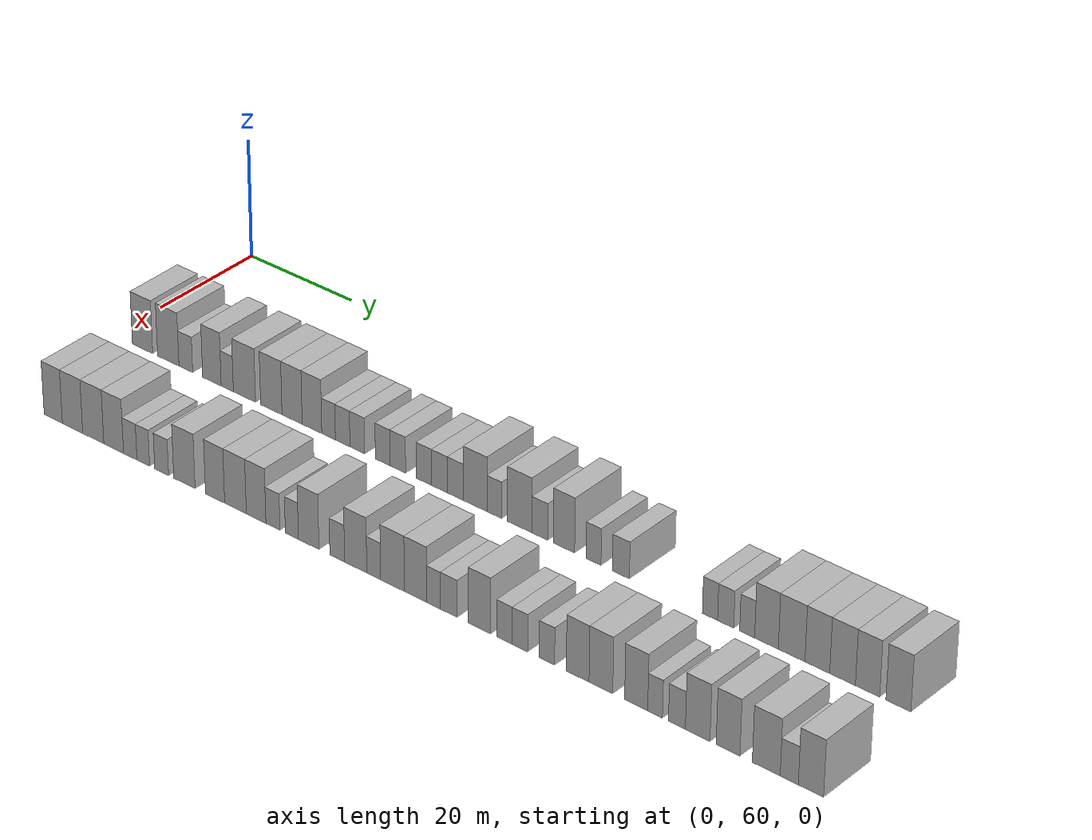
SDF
<sdf version="1.6">
 <world name="default">
  <model name="building_65">
   <static>1</static>
   <pose>25.0000 65.9230 0 0.000000 0.000000 0.000000</pose>
   <link name="link">
    <pose>0 0 4.50 0 0 0</pose>
    <collision name="collision"><geometry><box><size>10.0000 4.0965 9.0000</size></box></geometry></collision>
    <visual name="visual">
     <cast_shadows>0</cast_shadows>
     <geometry><box><size>10.0000 4.0965 9.0000</size></box></geometry>
     <material>
      <script>
       <uri>model://HANNAS_wall/materials/scripts</uri>
       <uri>model://HANNAS_wall/materials/textures</uri>
       <name>vrc/HANNAS_wall</name>
      </script>
     </material>
    </visual>
   </link>
  </model>
  <model name="building_66">
   <static>1</static>
   <pose>25.0000 71.1100 0 0.000000 0.000000 0.000000</pose>
   <link name="link">
    <pose>0 0 4.50 0 0 0</pose>
    <collision name="collision"><geometry><box><size>10.0000 4.2775 9.0000</size></box></geometry></collision>
    <visual name="visual">
     <cast_shadows>0</cast_shadows>
     <geometry><box><size>10.0000 4.2775 9.0000</size></box></geometry>
     <material>
      <script>
       <uri>model://HANNAS_wall/materials/scripts</uri>
       <uri>model://HANNAS_wall/materials/textures</uri>
       <name>vrc/HANNAS_wall</name>
      </script>
     </material>
    </visual>
   </link>
  </model>
  <model name="building_67">
   <static>1</static>
   <pose>25.0000 74.6174 0 0.000000 0.000000 0.000000</pose>
   <link name="link">
    <pose>0 0 3.00 0 0 0</pose>
    <collision name="collision"><geometry><box><size>10.0000 2.7374 6.0000</size></box></geometry></collision>
    <visual name="visual">
     <cast_shadows>0</cast_shadows>
     <geometry><box><size>10.0000 2.7374 6.0000</size></box></geometry>
     <material>
      <script>
       <uri>model://HANNAS_wall/materials/scripts</uri>
       <uri>model://HANNAS_wall/materials/textures</uri>
       <name>vrc/HANNAS_wall</name>
      </script>
     </material>
    </visual>
   </link>
  </model>
  <model name="building_68">
   <static>1</static>
   <pose>25.0000 79.8199 0 0.000000 0.000000 0.000000</pose>
   <link name="link">
    <pose>0 0 4.50 0 0 0</pose>
    <collision name="collision"><geometry><box><size>10.0000 3.6675 9.0000</size></box></geometry></collision>
    <visual name="visual">
     <cast_shadows>0</cast_shadows>
     <geometry><box><size>10.0000 3.6675 9.0000</size></box></geometry>
     <material>
      <script>
       <uri>model://HANNAS_wall/materials/scripts</uri>
       <uri>model://HANNAS_wall/materials/textures</uri>
       <name>vrc/HANNAS_wall</name>
      </script>
     </material>
    </visual>
   </link>
  </model>
  <model name="building_69">
   <static>1</static>
   <pose>25.0000 82.8558 0 0.000000 0.000000 0.000000</pose>
   <link name="link">
    <pose>0 0 3.00 0 0 0</pose>
    <collision name="collision"><geometry><box><size>10.0000 2.4043 6.0000</size></box></geometry></collision>
    <visual name="visual">
     <cast_shadows>0</cast_shadows>
     <geometry><box><size>10.0000 2.4043 6.0000</size></box></geometry>
     <material>
      <script>
       <uri>model://HANNAS_wall/materials/scripts</uri>
       <uri>model://HANNAS_wall/materials/textures</uri>
       <name>vrc/HANNAS_wall</name>
      </script>
     </material>
    </visual>
   </link>
  </model>
  <model name="building_70">
   <static>1</static>
   <pose>25.0000 86.2320 0 0.000000 0.000000 0.000000</pose>
   <link name="link">
    <pose>0 0 4.50 0 0 0</pose>
    <collision name="collision"><geometry><box><size>10.0000 4.3482 9.0000</size></box></geometry></collision>
    <visual name="visual">
     <cast_shadows>0</cast_shadows>
     <geometry><box><size>10.0000 4.3482 9.0000</size></box></geometry>
     <material>
      <script>
       <uri>model://HANNAS_wall/materials/scripts</uri>
       <uri>model://HANNAS_wall/materials/textures</uri>
       <name>vrc/HANNAS_wall</name>
      </script>
     </material>
    </visual>
   </link>
  </model>
  <model name="building_71">
   <static>1</static>
   <pose>25.0000 91.4796 0 0.000000 0.000000 0.000000</pose>
   <link name="link">
    <pose>0 0 4.50 0 0 0</pose>
    <collision name="collision"><geometry><box><size>10.0000 4.1470 9.0000</size></box></geometry></collision>
    <visual name="visual">
     <cast_shadows>0</cast_shadows>
     <geometry><box><size>10.0000 4.1470 9.0000</size></box></geometry>
     <material>
      <script>
       <uri>model://HANNAS_wall/materials/scripts</uri>
       <uri>model://HANNAS_wall/materials/textures</uri>
       <name>vrc/HANNAS_wall</name>
      </script>
     </material>
    </visual>
   </link>
  </model>
  <model name="building_72">
   <static>1</static>
   <pose>25.0000 95.5013 0 0.000000 0.000000 0.000000</pose>
   <link name="link">
    <pose>0 0 4.50 0 0 0</pose>
    <collision name="collision"><geometry><box><size>10.0000 3.8965 9.0000</size></box></geometry></collision>
    <visual name="visual">
     <cast_shadows>0</cast_shadows>
     <geometry><box><size>10.0000 3.8965 9.0000</size></box></geometry>
     <material>
      <script>
       <uri>model://HANNAS_wall/materials/scripts</uri>
       <uri>model://HANNAS_wall/materials/textures</uri>
       <name>vrc/HANNAS_wall</name>
      </script>
     </material>
    </visual>
   </link>
  </model>
  <model name="building_73">
   <static>1</static>
   <pose>25.0000 99.3307 0 0.000000 0.000000 0.000000</pose>
   <link name="link">
    <pose>0 0 4.50 0 0 0</pose>
    <collision name="collision"><geometry><box><size>10.0000 3.7624 9.0000</size></box></geometry></collision>
    <visual name="visual">
     <cast_shadows>0</cast_shadows>
     <geometry><box><size>10.0000 3.7624 9.0000</size></box></geometry>
     <material>
      <script>
       <uri>model://HANNAS_wall/materials/scripts</uri>
       <uri>model://HANNAS_wall/materials/textures</uri>
       <name>vrc/HANNAS_wall</name>
      </script>
     </material>
    </visual>
   </link>
  </model>
  <model name="building_74">
   <static>1</static>
   <pose>25.0000 102.5111 0 0.000000 0.000000 0.000000</pose>
   <link name="link">
    <pose>0 0 3.00 0 0 0</pose>
    <collision name="collision"><geometry><box><size>10.0000 2.5984 6.0000</size></box></geometry></collision>
    <visual name="visual">
     <cast_shadows>0</cast_shadows>
     <geometry><box><size>10.0000 2.5984 6.0000</size></box></geometry>
     <material>
      <script>
       <uri>model://HANNAS_wall/materials/scripts</uri>
       <uri>model://HANNAS_wall/materials/textures</uri>
       <name>vrc/HANNAS_wall</name>
      </script>
     </material>
    </visual>
   </link>
  </model>
  <model name="building_75">
   <static>1</static>
   <pose>25.0000 105.1923 0 0.000000 0.000000 0.000000</pose>
   <link name="link">
    <pose>0 0 3.00 0 0 0</pose>
    <collision name="collision"><geometry><box><size>10.0000 2.7638 6.0000</size></box></geometry></collision>
    <visual name="visual">
     <cast_shadows>0</cast_shadows>
     <geometry><box><size>10.0000 2.7638 6.0000</size></box></geometry>
     <material>
      <script>
       <uri>model://HANNAS_wall/materials/scripts</uri>
       <uri>model://HANNAS_wall/materials/textures</uri>
       <name>vrc/HANNAS_wall</name>
      </script>
     </material>
    </visual>
   </link>
  </model>
  <model name="building_76">
   <static>1</static>
   <pose>25.0000 107.9805 0 0.000000 0.000000 0.000000</pose>
   <link name="link">
    <pose>0 0 3.00 0 0 0</pose>
    <collision name="collision"><geometry><box><size>10.0000 2.8127 6.0000</size></box></geometry></collision>
    <visual name="visual">
     <cast_shadows>0</cast_shadows>
     <geometry><box><size>10.0000 2.8127 6.0000</size></box></geometry>
     <material>
      <script>
       <uri>model://HANNAS_wall/materials/scripts</uri>
       <uri>model://HANNAS_wall/materials/textures</uri>
       <name>vrc/HANNAS_wall</name>
      </script>
     </material>
    </visual>
   </link>
  </model>
  <model name="building_77">
   <static>1</static>
   <pose>25.0000 112.7654 0 0.000000 0.000000 0.000000</pose>
   <link name="link">
    <pose>0 0 3.00 0 0 0</pose>
    <collision name="collision"><geometry><box><size>10.0000 2.7569 6.0000</size></box></geometry></collision>
    <visual name="visual">
     <cast_shadows>0</cast_shadows>
     <geometry><box><size>10.0000 2.7569 6.0000</size></box></geometry>
     <material>
      <script>
       <uri>model://HANNAS_wall/materials/scripts</uri>
       <uri>model://HANNAS_wall/materials/textures</uri>
       <name>vrc/HANNAS_wall</name>
      </script>
     </material>
    </visual>
   </link>
  </model>
  <model name="building_78">
   <static>1</static>
   <pose>25.0000 115.5969 0 0.000000 0.000000 0.000000</pose>
   <link name="link">
    <pose>0 0 3.00 0 0 0</pose>
    <collision name="collision"><geometry><box><size>10.0000 2.9061 6.0000</size></box></geometry></collision>
    <visual name="visual">
     <cast_shadows>0</cast_shadows>
     <geometry><box><size>10.0000 2.9061 6.0000</size></box></geometry>
     <material>
      <script>
       <uri>model://HANNAS_wall/materials/scripts</uri>
       <uri>model://HANNAS_wall/materials/textures</uri>
       <name>vrc/HANNAS_wall</name>
      </script>
     </material>
    </visual>
   </link>
  </model>
  <model name="building_79">
   <static>1</static>
   <pose>25.0000 120.4646 0 0.000000 0.000000 0.000000</pose>
   <link name="link">
    <pose>0 0 3.00 0 0 0</pose>
    <collision name="collision"><geometry><box><size>10.0000 2.8292 6.0000</size></box></geometry></collision>
    <visual name="visual">
     <cast_shadows>0</cast_shadows>
     <geometry><box><size>10.0000 2.8292 6.0000</size></box></geometry>
     <material>
      <script>
       <uri>model://HANNAS_wall/materials/scripts</uri>
       <uri>model://HANNAS_wall/materials/textures</uri>
       <name>vrc/HANNAS_wall</name>
      </script>
     </material>
    </visual>
   </link>
  </model>
  <model name="building_80">
   <static>1</static>
   <pose>25.0000 123.3342 0 0.000000 0.000000 0.000000</pose>
   <link name="link">
    <pose>0 0 3.00 0 0 0</pose>
    <collision name="collision"><geometry><box><size>10.0000 2.9100 6.0000</size></box></geometry></collision>
    <visual name="visual">
     <cast_shadows>0</cast_shadows>
     <geometry><box><size>10.0000 2.9100 6.0000</size></box></geometry>
     <material>
      <script>
       <uri>model://HANNAS_wall/materials/scripts</uri>
       <uri>model://HANNAS_wall/materials/textures</uri>
       <name>vrc/HANNAS_wall</name>
      </script>
     </material>
    </visual>
   </link>
  </model>
  <model name="building_81">
   <static>1</static>
   <pose>25.0000 126.2381 0 0.000000 0.000000 0.000000</pose>
   <link name="link">
    <pose>0 0 3.00 0 0 0</pose>
    <collision name="collision"><geometry><box><size>10.0000 2.8977 6.0000</size></box></geometry></collision>
    <visual name="visual">
     <cast_shadows>0</cast_shadows>
     <geometry><box><size>10.0000 2.8977 6.0000</size></box></geometry>
     <material>
      <script>
       <uri>model://HANNAS_wall/materials/scripts</uri>
       <uri>model://HANNAS_wall/materials/textures</uri>
       <name>vrc/HANNAS_wall</name>
      </script>
     </material>
    </visual>
   </link>
  </model>
  <model name="building_82">
   <static>1</static>
   <pose>25.0000 129.8445 0 0.000000 0.000000 0.000000</pose>
   <link name="link">
    <pose>0 0 4.50 0 0 0</pose>
    <collision name="collision"><geometry><box><size>10.0000 4.3152 9.0000</size></box></geometry></collision>
    <visual name="visual">
     <cast_shadows>0</cast_shadows>
     <geometry><box><size>10.0000 4.3152 9.0000</size></box></geometry>
     <material>
      <script>
       <uri>model://HANNAS_wall/materials/scripts</uri>
       <uri>model://HANNAS_wall/materials/textures</uri>
       <name>vrc/HANNAS_wall</name>
      </script>
     </material>
    </visual>
   </link>
  </model>
  <model name="building_83">
   <static>1</static>
   <pose>25.0000 133.3443 0 0.000000 0.000000 0.000000</pose>
   <link name="link">
    <pose>0 0 3.00 0 0 0</pose>
    <collision name="collision"><geometry><box><size>10.0000 2.6845 6.0000</size></box></geometry></collision>
    <visual name="visual">
     <cast_shadows>0</cast_shadows>
     <geometry><box><size>10.0000 2.6845 6.0000</size></box></geometry>
     <material>
      <script>
       <uri>model://HANNAS_wall/materials/scripts</uri>
       <uri>model://HANNAS_wall/materials/textures</uri>
       <name>vrc/HANNAS_wall</name>
      </script>
     </material>
    </visual>
   </link>
  </model>
  <model name="building_84">
   <static>1</static>
   <pose>25.0000 137.8911 0 0.000000 0.000000 0.000000</pose>
   <link name="link">
    <pose>0 0 4.50 0 0 0</pose>
    <collision name="collision"><geometry><box><size>10.0000 4.4090 9.0000</size></box></geometry></collision>
    <visual name="visual">
     <cast_shadows>0</cast_shadows>
     <geometry><box><size>10.0000 4.4090 9.0000</size></box></geometry>
     <material>
      <script>
       <uri>model://HANNAS_wall/materials/scripts</uri>
       <uri>model://HANNAS_wall/materials/textures</uri>
       <name>vrc/HANNAS_wall</name>
      </script>
     </material>
    </visual>
   </link>
  </model>
  <model name="building_85">
   <static>1</static>
   <pose>25.0000 141.5216 0 0.000000 0.000000 0.000000</pose>
   <link name="link">
    <pose>0 0 3.00 0 0 0</pose>
    <collision name="collision"><geometry><box><size>10.0000 2.8520 6.0000</size></box></geometry></collision>
    <visual name="visual">
     <cast_shadows>0</cast_shadows>
     <geometry><box><size>10.0000 2.8520 6.0000</size></box></geometry>
     <material>
      <script>
       <uri>model://HANNAS_wall/materials/scripts</uri>
       <uri>model://HANNAS_wall/materials/textures</uri>
       <name>vrc/HANNAS_wall</name>
      </script>
     </material>
    </visual>
   </link>
  </model>
  <model name="building_86">
   <static>1</static>
   <pose>25.0000 145.8327 0 0.000000 0.000000 0.000000</pose>
   <link name="link">
    <pose>0 0 4.50 0 0 0</pose>
    <collision name="collision"><geometry><box><size>10.0000 3.7702 9.0000</size></box></geometry></collision>
    <visual name="visual">
     <cast_shadows>0</cast_shadows>
     <geometry><box><size>10.0000 3.7702 9.0000</size></box></geometry>
     <material>
      <script>
       <uri>model://HANNAS_wall/materials/scripts</uri>
       <uri>model://HANNAS_wall/materials/textures</uri>
       <name>vrc/HANNAS_wall</name>
      </script>
     </material>
    </visual>
   </link>
  </model>
  <model name="building_87">
   <static>1</static>
   <pose>25.0000 151.0369 0 0.000000 0.000000 0.000000</pose>
   <link name="link">
    <pose>0 0 3.00 0 0 0</pose>
    <collision name="collision"><geometry><box><size>10.0000 2.6382 6.0000</size></box></geometry></collision>
    <visual name="visual">
     <cast_shadows>0</cast_shadows>
     <geometry><box><size>10.0000 2.6382 6.0000</size></box></geometry>
     <material>
      <script>
       <uri>model://HANNAS_wall/materials/scripts</uri>
       <uri>model://HANNAS_wall/materials/textures</uri>
       <name>vrc/HANNAS_wall</name>
      </script>
     </material>
    </visual>
   </link>
  </model>
  <model name="building_88">
   <static>1</static>
   <pose>25.0000 155.8400 0 0.000000 0.000000 0.000000</pose>
   <link name="link">
    <pose>0 0 3.00 0 0 0</pose>
    <collision name="collision"><geometry><box><size>10.0000 2.9680 6.0000</size></box></geometry></collision>
    <visual name="visual">
     <cast_shadows>0</cast_shadows>
     <geometry><box><size>10.0000 2.9680 6.0000</size></box></geometry>
     <material>
      <script>
       <uri>model://HANNAS_wall/materials/scripts</uri>
       <uri>model://HANNAS_wall/materials/textures</uri>
       <name>vrc/HANNAS_wall</name>
      </script>
     </material>
    </visual>
   </link>
  </model>
  <model name="building_89">
   <static>1</static>
   <pose>25.0000 171.1662 0 0.000000 0.000000 0.000000</pose>
   <link name="link">
    <pose>0 0 3.00 0 0 0</pose>
    <collision name="collision"><geometry><box><size>10.0000 2.5614 6.0000</size></box></geometry></collision>
    <visual name="visual">
     <cast_shadows>0</cast_shadows>
     <geometry><box><size>10.0000 2.5614 6.0000</size></box></geometry>
     <material>
      <script>
       <uri>model://HANNAS_wall/materials/scripts</uri>
       <uri>model://HANNAS_wall/materials/textures</uri>
       <name>vrc/HANNAS_wall</name>
      </script>
     </material>
    </visual>
   </link>
  </model>
  <model name="building_90">
   <static>1</static>
   <pose>25.0000 173.8166 0 0.000000 0.000000 0.000000</pose>
   <link name="link">
    <pose>0 0 3.00 0 0 0</pose>
    <collision name="collision"><geometry><box><size>10.0000 2.7394 6.0000</size></box></geometry></collision>
    <visual name="visual">
     <cast_shadows>0</cast_shadows>
     <geometry><box><size>10.0000 2.7394 6.0000</size></box></geometry>
     <material>
      <script>
       <uri>model://HANNAS_wall/materials/scripts</uri>
       <uri>model://HANNAS_wall/materials/textures</uri>
       <name>vrc/HANNAS_wall</name>
      </script>
     </material>
    </visual>
   </link>
  </model>
  <model name="building_91">
   <static>1</static>
   <pose>25.0000 177.4419 0 0.000000 0.000000 0.000000</pose>
   <link name="link">
    <pose>0 0 3.00 0 0 0</pose>
    <collision name="collision"><geometry><box><size>10.0000 2.5112 6.0000</size></box></geometry></collision>
    <visual name="visual">
     <cast_shadows>0</cast_shadows>
     <geometry><box><size>10.0000 2.5112 6.0000</size></box></geometry>
     <material>
      <script>
       <uri>model://HANNAS_wall/materials/scripts</uri>
       <uri>model://HANNAS_wall/materials/textures</uri>
       <name>vrc/HANNAS_wall</name>
      </script>
     </material>
    </visual>
   </link>
  </model>
  <model name="building_92">
   <static>1</static>
   <pose>25.0000 180.6765 0 0.000000 0.000000 0.000000</pose>
   <link name="link">
    <pose>0 0 4.50 0 0 0</pose>
    <collision name="collision"><geometry><box><size>10.0000 3.9580 9.0000</size></box></geometry></collision>
    <visual name="visual">
     <cast_shadows>0</cast_shadows>
     <geometry><box><size>10.0000 3.9580 9.0000</size></box></geometry>
     <material>
      <script>
       <uri>model://HANNAS_wall/materials/scripts</uri>
       <uri>model://HANNAS_wall/materials/textures</uri>
       <name>vrc/HANNAS_wall</name>
      </script>
     </material>
    </visual>
   </link>
  </model>
  <model name="building_93">
   <static>1</static>
   <pose>25.0000 184.8599 0 0.000000 0.000000 0.000000</pose>
   <link name="link">
    <pose>0 0 4.50 0 0 0</pose>
    <collision name="collision"><geometry><box><size>10.0000 4.4089 9.0000</size></box></geometry></collision>
    <visual name="visual">
     <cast_shadows>0</cast_shadows>
     <geometry><box><size>10.0000 4.4089 9.0000</size></box></geometry>
     <material>
      <script>
       <uri>model://HANNAS_wall/materials/scripts</uri>
       <uri>model://HANNAS_wall/materials/textures</uri>
       <name>vrc/HANNAS_wall</name>
      </script>
     </material>
    </visual>
   </link>
  </model>
  <model name="building_94">
   <static>1</static>
   <pose>25.0000 189.0969 0 0.000000 0.000000 0.000000</pose>
   <link name="link">
    <pose>0 0 4.50 0 0 0</pose>
    <collision name="collision"><geometry><box><size>10.0000 4.0651 9.0000</size></box></geometry></collision>
    <visual name="visual">
     <cast_shadows>0</cast_shadows>
     <geometry><box><size>10.0000 4.0651 9.0000</size></box></geometry>
     <material>
      <script>
       <uri>model://HANNAS_wall/materials/scripts</uri>
       <uri>model://HANNAS_wall/materials/textures</uri>
       <name>vrc/HANNAS_wall</name>
      </script>
     </material>
    </visual>
   </link>
  </model>
  <model name="building_95">
   <static>1</static>
   <pose>25.0000 193.2260 0 0.000000 0.000000 0.000000</pose>
   <link name="link">
    <pose>0 0 4.50 0 0 0</pose>
    <collision name="collision"><geometry><box><size>10.0000 4.1931 9.0000</size></box></geometry></collision>
    <visual name="visual">
     <cast_shadows>0</cast_shadows>
     <geometry><box><size>10.0000 4.1931 9.0000</size></box></geometry>
     <material>
      <script>
       <uri>model://HANNAS_wall/materials/scripts</uri>
       <uri>model://HANNAS_wall/materials/textures</uri>
       <name>vrc/HANNAS_wall</name>
      </script>
     </material>
    </visual>
   </link>
  </model>
  <model name="building_96">
   <static>1</static>
   <pose>25.0000 197.2912 0 0.000000 0.000000 0.000000</pose>
   <link name="link">
    <pose>0 0 4.50 0 0 0</pose>
    <collision name="collision"><geometry><box><size>10.0000 3.9373 9.0000</size></box></geometry></collision>
    <visual name="visual">
     <cast_shadows>0</cast_shadows>
     <geometry><box><size>10.0000 3.9373 9.0000</size></box></geometry>
     <material>
      <script>
       <uri>model://HANNAS_wall/materials/scripts</uri>
       <uri>model://HANNAS_wall/materials/textures</uri>
       <name>vrc/HANNAS_wall</name>
      </script>
     </material>
    </visual>
   </link>
  </model>
  <model name="building_97">
   <static>1</static>
   <pose>25.0000 202.2683 0 0.000000 0.000000 0.000000</pose>
   <link name="link">
    <pose>0 0 4.50 0 0 0</pose>
    <collision name="collision"><geometry><box><size>10.0000 4.0169 9.0000</size></box></geometry></collision>
    <visual name="visual">
     <cast_shadows>0</cast_shadows>
     <geometry><box><size>10.0000 4.0169 9.0000</size></box></geometry>
     <material>
      <script>
       <uri>model://HANNAS_wall/materials/scripts</uri>
       <uri>model://HANNAS_wall/materials/textures</uri>
       <name>vrc/HANNAS_wall</name>
      </script>
     </material>
    </visual>
   </link>
  </model>
  <model name="building_168">
   <static>1</static>
   <pose>47.0000 69.4501 0 0.000000 0.000000 0.000000</pose>
   <link name="link">
    <pose>0 0 4.50 0 0 0</pose>
    <collision name="collision"><geometry><box><size>10.0000 3.6512 9.0000</size></box></geometry></collision>
    <visual name="visual">
     <cast_shadows>0</cast_shadows>
     <geometry><box><size>10.0000 3.6512 9.0000</size></box></geometry>
     <material>
      <script>
       <uri>model://HANNAS_wall/materials/scripts</uri>
       <uri>model://HANNAS_wall/materials/textures</uri>
       <name>vrc/HANNAS_wall</name>
      </script>
     </material>
    </visual>
   </link>
  </model>
  <model name="building_169">
   <static>1</static>
   <pose>47.0000 73.3020 0 0.000000 0.000000 0.000000</pose>
   <link name="link">
    <pose>0 0 4.50 0 0 0</pose>
    <collision name="collision"><geometry><box><size>10.0000 4.0527 9.0000</size></box></geometry></collision>
    <visual name="visual">
     <cast_shadows>0</cast_shadows>
     <geometry><box><size>10.0000 4.0527 9.0000</size></box></geometry>
     <material>
      <script>
       <uri>model://HANNAS_wall/materials/scripts</uri>
       <uri>model://HANNAS_wall/materials/textures</uri>
       <name>vrc/HANNAS_wall</name>
      </script>
     </material>
    </visual>
   </link>
  </model>
  <model name="building_170">
   <static>1</static>
   <pose>47.0000 77.4218 0 0.000000 0.000000 0.000000</pose>
   <link name="link">
    <pose>0 0 4.50 0 0 0</pose>
    <collision name="collision"><geometry><box><size>10.0000 4.1869 9.0000</size></box></geometry></collision>
    <visual name="visual">
     <cast_shadows>0</cast_shadows>
     <geometry><box><size>10.0000 4.1869 9.0000</size></box></geometry>
     <material>
      <script>
       <uri>model://HANNAS_wall/materials/scripts</uri>
       <uri>model://HANNAS_wall/materials/textures</uri>
       <name>vrc/HANNAS_wall</name>
      </script>
     </material>
    </visual>
   </link>
  </model>
  <model name="building_171">
   <static>1</static>
   <pose>47.0000 81.4517 0 0.000000 0.000000 0.000000</pose>
   <link name="link">
    <pose>0 0 4.50 0 0 0</pose>
    <collision name="collision"><geometry><box><size>10.0000 3.8730 9.0000</size></box></geometry></collision>
    <visual name="visual">
     <cast_shadows>0</cast_shadows>
     <geometry><box><size>10.0000 3.8730 9.0000</size></box></geometry>
     <material>
      <script>
       <uri>model://HANNAS_wall/materials/scripts</uri>
       <uri>model://HANNAS_wall/materials/textures</uri>
       <name>vrc/HANNAS_wall</name>
      </script>
     </material>
    </visual>
   </link>
  </model>
  <model name="building_172">
   <static>1</static>
   <pose>47.0000 84.7030 0 0.000000 0.000000 0.000000</pose>
   <link name="link">
    <pose>0 0 3.00 0 0 0</pose>
    <collision name="collision"><geometry><box><size>10.0000 2.6296 6.0000</size></box></geometry></collision>
    <visual name="visual">
     <cast_shadows>0</cast_shadows>
     <geometry><box><size>10.0000 2.6296 6.0000</size></box></geometry>
     <material>
      <script>
       <uri>model://HANNAS_wall/materials/scripts</uri>
       <uri>model://HANNAS_wall/materials/textures</uri>
       <name>vrc/HANNAS_wall</name>
      </script>
     </material>
    </visual>
   </link>
  </model>
  <model name="building_173">
   <static>1</static>
   <pose>47.0000 87.2542 0 0.000000 0.000000 0.000000</pose>
   <link name="link">
    <pose>0 0 3.00 0 0 0</pose>
    <collision name="collision"><geometry><box><size>10.0000 2.4729 6.0000</size></box></geometry></collision>
    <visual name="visual">
     <cast_shadows>0</cast_shadows>
     <geometry><box><size>10.0000 2.4729 6.0000</size></box></geometry>
     <material>
      <script>
       <uri>model://HANNAS_wall/materials/scripts</uri>
       <uri>model://HANNAS_wall/materials/textures</uri>
       <name>vrc/HANNAS_wall</name>
      </script>
     </material>
    </visual>
   </link>
  </model>
  <model name="building_174">
   <static>1</static>
   <pose>47.0000 90.8323 0 0.000000 0.000000 0.000000</pose>
   <link name="link">
    <pose>0 0 3.00 0 0 0</pose>
    <collision name="collision"><geometry><box><size>10.0000 2.6833 6.0000</size></box></geometry></collision>
    <visual name="visual">
     <cast_shadows>0</cast_shadows>
     <geometry><box><size>10.0000 2.6833 6.0000</size></box></geometry>
     <material>
      <script>
       <uri>model://HANNAS_wall/materials/scripts</uri>
       <uri>model://HANNAS_wall/materials/textures</uri>
       <name>vrc/HANNAS_wall</name>
      </script>
     </material>
    </visual>
   </link>
  </model>
  <model name="building_175">
   <static>1</static>
   <pose>47.0000 95.2192 0 0.000000 0.000000 0.000000</pose>
   <link name="link">
    <pose>0 0 4.50 0 0 0</pose>
    <collision name="collision"><geometry><box><size>10.0000 4.0905 9.0000</size></box></geometry></collision>
    <visual name="visual">
     <cast_shadows>0</cast_shadows>
     <geometry><box><size>10.0000 4.0905 9.0000</size></box></geometry>
     <material>
      <script>
       <uri>model://HANNAS_wall/materials/scripts</uri>
       <uri>model://HANNAS_wall/materials/textures</uri>
       <name>vrc/HANNAS_wall</name>
      </script>
     </material>
    </visual>
   </link>
  </model>
  <model name="building_176">
   <static>1</static>
   <pose>47.0000 101.0885 0 0.000000 0.000000 0.000000</pose>
   <link name="link">
    <pose>0 0 4.50 0 0 0</pose>
    <collision name="collision"><geometry><box><size>10.0000 3.6480 9.0000</size></box></geometry></collision>
    <visual name="visual">
     <cast_shadows>0</cast_shadows>
     <geometry><box><size>10.0000 3.6480 9.0000</size></box></geometry>
     <material>
      <script>
       <uri>model://HANNAS_wall/materials/scripts</uri>
       <uri>model://HANNAS_wall/materials/textures</uri>
       <name>vrc/HANNAS_wall</name>
      </script>
     </material>
    </visual>
   </link>
  </model>
  <model name="building_177">
   <static>1</static>
   <pose>47.0000 104.9630 0 0.000000 0.000000 0.000000</pose>
   <link name="link">
    <pose>0 0 4.50 0 0 0</pose>
    <collision name="collision"><geometry><box><size>10.0000 4.1011 9.0000</size></box></geometry></collision>
    <visual name="visual">
     <cast_shadows>0</cast_shadows>
     <geometry><box><size>10.0000 4.1011 9.0000</size></box></geometry>
     <material>
      <script>
       <uri>model://HANNAS_wall/materials/scripts</uri>
       <uri>model://HANNAS_wall/materials/textures</uri>
       <name>vrc/HANNAS_wall</name>
      </script>
     </material>
    </visual>
   </link>
  </model>
  <model name="building_178">
   <static>1</static>
   <pose>47.0000 108.8554 0 0.000000 0.000000 0.000000</pose>
   <link name="link">
    <pose>0 0 4.50 0 0 0</pose>
    <collision name="collision"><geometry><box><size>10.0000 3.6836 9.0000</size></box></geometry></collision>
    <visual name="visual">
     <cast_shadows>0</cast_shadows>
     <geometry><box><size>10.0000 3.6836 9.0000</size></box></geometry>
     <material>
      <script>
       <uri>model://HANNAS_wall/materials/scripts</uri>
       <uri>model://HANNAS_wall/materials/textures</uri>
       <name>vrc/HANNAS_wall</name>
      </script>
     </material>
    </visual>
   </link>
  </model>
  <model name="building_179">
   <static>1</static>
   <pose>47.0000 112.0121 0 0.000000 0.000000 0.000000</pose>
   <link name="link">
    <pose>0 0 3.00 0 0 0</pose>
    <collision name="collision"><geometry><box><size>10.0000 2.6298 6.0000</size></box></geometry></collision>
    <visual name="visual">
     <cast_shadows>0</cast_shadows>
     <geometry><box><size>10.0000 2.6298 6.0000</size></box></geometry>
     <material>
      <script>
       <uri>model://HANNAS_wall/materials/scripts</uri>
       <uri>model://HANNAS_wall/materials/textures</uri>
       <name>vrc/HANNAS_wall</name>
      </script>
     </material>
    </visual>
   </link>
  </model>
  <model name="building_180">
   <static>1</static>
   <pose>47.0000 115.5392 0 0.000000 0.000000 0.000000</pose>
   <link name="link">
    <pose>0 0 3.00 0 0 0</pose>
    <collision name="collision"><geometry><box><size>10.0000 2.4243 6.0000</size></box></geometry></collision>
    <visual name="visual">
     <cast_shadows>0</cast_shadows>
     <geometry><box><size>10.0000 2.4243 6.0000</size></box></geometry>
     <material>
      <script>
       <uri>model://HANNAS_wall/materials/scripts</uri>
       <uri>model://HANNAS_wall/materials/textures</uri>
       <name>vrc/HANNAS_wall</name>
      </script>
     </material>
    </visual>
   </link>
  </model>
  <model name="building_181">
   <static>1</static>
   <pose>47.0000 118.6518 0 0.000000 0.000000 0.000000</pose>
   <link name="link">
    <pose>0 0 4.50 0 0 0</pose>
    <collision name="collision"><geometry><box><size>10.0000 3.8011 9.0000</size></box></geometry></collision>
    <visual name="visual">
     <cast_shadows>0</cast_shadows>
     <geometry><box><size>10.0000 3.8011 9.0000</size></box></geometry>
     <material>
      <script>
       <uri>model://HANNAS_wall/materials/scripts</uri>
       <uri>model://HANNAS_wall/materials/textures</uri>
       <name>vrc/HANNAS_wall</name>
      </script>
     </material>
    </visual>
   </link>
  </model>
  <model name="building_182">
   <static>1</static>
   <pose>47.0000 123.9074 0 0.000000 0.000000 0.000000</pose>
   <link name="link">
    <pose>0 0 3.00 0 0 0</pose>
    <collision name="collision"><geometry><box><size>10.0000 2.7101 6.0000</size></box></geometry></collision>
    <visual name="visual">
     <cast_shadows>0</cast_shadows>
     <geometry><box><size>10.0000 2.7101 6.0000</size></box></geometry>
     <material>
      <script>
       <uri>model://HANNAS_wall/materials/scripts</uri>
       <uri>model://HANNAS_wall/materials/textures</uri>
       <name>vrc/HANNAS_wall</name>
      </script>
     </material>
    </visual>
   </link>
  </model>
  <model name="building_183">
   <static>1</static>
   <pose>47.0000 127.2789 0 0.000000 0.000000 0.000000</pose>
   <link name="link">
    <pose>0 0 4.50 0 0 0</pose>
    <collision name="collision"><geometry><box><size>10.0000 4.0329 9.0000</size></box></geometry></collision>
    <visual name="visual">
     <cast_shadows>0</cast_shadows>
     <geometry><box><size>10.0000 4.0329 9.0000</size></box></geometry>
     <material>
      <script>
       <uri>model://HANNAS_wall/materials/scripts</uri>
       <uri>model://HANNAS_wall/materials/textures</uri>
       <name>vrc/HANNAS_wall</name>
      </script>
     </material>
    </visual>
   </link>
  </model>
  <model name="building_184">
   <static>1</static>
   <pose>47.0000 130.5499 0 0.000000 0.000000 0.000000</pose>
   <link name="link">
    <pose>0 0 3.00 0 0 0</pose>
    <collision name="collision"><geometry><box><size>10.0000 2.5091 6.0000</size></box></geometry></collision>
    <visual name="visual">
     <cast_shadows>0</cast_shadows>
     <geometry><box><size>10.0000 2.5091 6.0000</size></box></geometry>
     <material>
      <script>
       <uri>model://HANNAS_wall/materials/scripts</uri>
       <uri>model://HANNAS_wall/materials/textures</uri>
       <name>vrc/HANNAS_wall</name>
      </script>
     </material>
    </visual>
   </link>
  </model>
  <model name="building_185">
   <static>1</static>
   <pose>47.0000 133.9427 0 0.000000 0.000000 0.000000</pose>
   <link name="link">
    <pose>0 0 4.50 0 0 0</pose>
    <collision name="collision"><geometry><box><size>10.0000 4.2765 9.0000</size></box></geometry></collision>
    <visual name="visual">
     <cast_shadows>0</cast_shadows>
     <geometry><box><size>10.0000 4.2765 9.0000</size></box></geometry>
     <material>
      <script>
       <uri>model://HANNAS_wall/materials/scripts</uri>
       <uri>model://HANNAS_wall/materials/textures</uri>
       <name>vrc/HANNAS_wall</name>
      </script>
     </material>
    </visual>
   </link>
  </model>
  <model name="building_186">
   <static>1</static>
   <pose>47.0000 138.0721 0 0.000000 0.000000 0.000000</pose>
   <link name="link">
    <pose>0 0 4.50 0 0 0</pose>
    <collision name="collision"><geometry><box><size>10.0000 3.9823 9.0000</size></box></geometry></collision>
    <visual name="visual">
     <cast_shadows>0</cast_shadows>
     <geometry><box><size>10.0000 3.9823 9.0000</size></box></geometry>
     <material>
      <script>
       <uri>model://HANNAS_wall/materials/scripts</uri>
       <uri>model://HANNAS_wall/materials/textures</uri>
       <name>vrc/HANNAS_wall</name>
      </script>
     </material>
    </visual>
   </link>
  </model>
  <model name="building_187">
   <static>1</static>
   <pose>47.0000 141.2774 0 0.000000 0.000000 0.000000</pose>
   <link name="link">
    <pose>0 0 3.00 0 0 0</pose>
    <collision name="collision"><geometry><box><size>10.0000 2.4284 6.0000</size></box></geometry></collision>
    <visual name="visual">
     <cast_shadows>0</cast_shadows>
     <geometry><box><size>10.0000 2.4284 6.0000</size></box></geometry>
     <material>
      <script>
       <uri>model://HANNAS_wall/materials/scripts</uri>
       <uri>model://HANNAS_wall/materials/textures</uri>
       <name>vrc/HANNAS_wall</name>
      </script>
     </material>
    </visual>
   </link>
  </model>
  <model name="building_188">
   <static>1</static>
   <pose>47.0000 143.9766 0 0.000000 0.000000 0.000000</pose>
   <link name="link">
    <pose>0 0 3.00 0 0 0</pose>
    <collision name="collision"><geometry><box><size>10.0000 2.9699 6.0000</size></box></geometry></collision>
    <visual name="visual">
     <cast_shadows>0</cast_shadows>
     <geometry><box><size>10.0000 2.9699 6.0000</size></box></geometry>
     <material>
      <script>
       <uri>model://HANNAS_wall/materials/scripts</uri>
       <uri>model://HANNAS_wall/materials/textures</uri>
       <name>vrc/HANNAS_wall</name>
      </script>
     </material>
    </visual>
   </link>
  </model>
  <model name="building_189">
   <static>1</static>
   <pose>47.0000 149.4108 0 0.000000 0.000000 0.000000</pose>
   <link name="link">
    <pose>0 0 4.50 0 0 0</pose>
    <collision name="collision"><geometry><box><size>10.0000 3.8985 9.0000</size></box></geometry></collision>
    <visual name="visual">
     <cast_shadows>0</cast_shadows>
     <geometry><box><size>10.0000 3.8985 9.0000</size></box></geometry>
     <material>
      <script>
       <uri>model://HANNAS_wall/materials/scripts</uri>
       <uri>model://HANNAS_wall/materials/textures</uri>
       <name>vrc/HANNAS_wall</name>
      </script>
     </material>
    </visual>
   </link>
  </model>
  <model name="building_190">
   <static>1</static>
   <pose>47.0000 153.7264 0 0.000000 0.000000 0.000000</pose>
   <link name="link">
    <pose>0 0 3.00 0 0 0</pose>
    <collision name="collision"><geometry><box><size>10.0000 2.7326 6.0000</size></box></geometry></collision>
    <visual name="visual">
     <cast_shadows>0</cast_shadows>
     <geometry><box><size>10.0000 2.7326 6.0000</size></box></geometry>
     <material>
      <script>
       <uri>model://HANNAS_wall/materials/scripts</uri>
       <uri>model://HANNAS_wall/materials/textures</uri>
       <name>vrc/HANNAS_wall</name>
      </script>
     </material>
    </visual>
   </link>
  </model>
  <model name="building_191">
   <static>1</static>
   <pose>47.0000 156.4266 0 0.000000 0.000000 0.000000</pose>
   <link name="link">
    <pose>0 0 3.00 0 0 0</pose>
    <collision name="collision"><geometry><box><size>10.0000 2.6678 6.0000</size></box></geometry></collision>
    <visual name="visual">
     <cast_shadows>0</cast_shadows>
     <geometry><box><size>10.0000 2.6678 6.0000</size></box></geometry>
     <material>
      <script>
       <uri>model://HANNAS_wall/materials/scripts</uri>
       <uri>model://HANNAS_wall/materials/textures</uri>
       <name>vrc/HANNAS_wall</name>
      </script>
     </material>
    </visual>
   </link>
  </model>
  <model name="building_192">
   <static>1</static>
   <pose>47.0000 161.0735 0 0.000000 0.000000 0.000000</pose>
   <link name="link">
    <pose>0 0 3.00 0 0 0</pose>
    <collision name="collision"><geometry><box><size>10.0000 2.6259 6.0000</size></box></geometry></collision>
    <visual name="visual">
     <cast_shadows>0</cast_shadows>
     <geometry><box><size>10.0000 2.6259 6.0000</size></box></geometry>
     <material>
      <script>
       <uri>model://HANNAS_wall/materials/scripts</uri>
       <uri>model://HANNAS_wall/materials/textures</uri>
       <name>vrc/HANNAS_wall</name>
      </script>
     </material>
    </visual>
   </link>
  </model>
  <model name="building_193">
   <static>1</static>
   <pose>47.0000 166.3192 0 0.000000 0.000000 0.000000</pose>
   <link name="link">
    <pose>0 0 4.50 0 0 0</pose>
    <collision name="collision"><geometry><box><size>10.0000 3.8654 9.0000</size></box></geometry></collision>
    <visual name="visual">
     <cast_shadows>0</cast_shadows>
     <geometry><box><size>10.0000 3.8654 9.0000</size></box></geometry>
     <material>
      <script>
       <uri>model://HANNAS_wall/materials/scripts</uri>
       <uri>model://HANNAS_wall/materials/textures</uri>
       <name>vrc/HANNAS_wall</name>
      </script>
     </material>
    </visual>
   </link>
  </model>
  <model name="building_194">
   <static>1</static>
   <pose>47.0000 170.2509 0 0.000000 0.000000 0.000000</pose>
   <link name="link">
    <pose>0 0 4.50 0 0 0</pose>
    <collision name="collision"><geometry><box><size>10.0000 3.9981 9.0000</size></box></geometry></collision>
    <visual name="visual">
     <cast_shadows>0</cast_shadows>
     <geometry><box><size>10.0000 3.9981 9.0000</size></box></geometry>
     <material>
      <script>
       <uri>model://HANNAS_wall/materials/scripts</uri>
       <uri>model://HANNAS_wall/materials/textures</uri>
       <name>vrc/HANNAS_wall</name>
      </script>
     </material>
    </visual>
   </link>
  </model>
  <model name="building_195">
   <static>1</static>
   <pose>47.0000 176.1743 0 0.000000 0.000000 0.000000</pose>
   <link name="link">
    <pose>0 0 4.50 0 0 0</pose>
    <collision name="collision"><geometry><box><size>10.0000 3.8487 9.0000</size></box></geometry></collision>
    <visual name="visual">
     <cast_shadows>0</cast_shadows>
     <geometry><box><size>10.0000 3.8487 9.0000</size></box></geometry>
     <material>
      <script>
       <uri>model://HANNAS_wall/materials/scripts</uri>
       <uri>model://HANNAS_wall/materials/textures</uri>
       <name>vrc/HANNAS_wall</name>
      </script>
     </material>
    </visual>
   </link>
  </model>
  <model name="building_196">
   <static>1</static>
   <pose>47.0000 179.3233 0 0.000000 0.000000 0.000000</pose>
   <link name="link">
    <pose>0 0 3.00 0 0 0</pose>
    <collision name="collision"><geometry><box><size>10.0000 2.4492 6.0000</size></box></geometry></collision>
    <visual name="visual">
     <cast_shadows>0</cast_shadows>
     <geometry><box><size>10.0000 2.4492 6.0000</size></box></geometry>
     <material>
      <script>
       <uri>model://HANNAS_wall/materials/scripts</uri>
       <uri>model://HANNAS_wall/materials/textures</uri>
       <name>vrc/HANNAS_wall</name>
      </script>
     </material>
    </visual>
   </link>
  </model>
  <model name="building_197">
   <static>1</static>
   <pose>47.0000 182.9405 0 0.000000 0.000000 0.000000</pose>
   <link name="link">
    <pose>0 0 3.00 0 0 0</pose>
    <collision name="collision"><geometry><box><size>10.0000 2.7852 6.0000</size></box></geometry></collision>
    <visual name="visual">
     <cast_shadows>0</cast_shadows>
     <geometry><box><size>10.0000 2.7852 6.0000</size></box></geometry>
     <material>
      <script>
       <uri>model://HANNAS_wall/materials/scripts</uri>
       <uri>model://HANNAS_wall/materials/textures</uri>
       <name>vrc/HANNAS_wall</name>
      </script>
     </material>
    </visual>
   </link>
  </model>
  <model name="building_198">
   <static>1</static>
   <pose>47.0000 186.3498 0 0.000000 0.000000 0.000000</pose>
   <link name="link">
    <pose>0 0 4.50 0 0 0</pose>
    <collision name="collision"><geometry><box><size>10.0000 4.0334 9.0000</size></box></geometry></collision>
    <visual name="visual">
     <cast_shadows>0</cast_shadows>
     <geometry><box><size>10.0000 4.0334 9.0000</size></box></geometry>
     <material>
      <script>
       <uri>model://HANNAS_wall/materials/scripts</uri>
       <uri>model://HANNAS_wall/materials/textures</uri>
       <name>vrc/HANNAS_wall</name>
      </script>
     </material>
    </visual>
   </link>
  </model>
  <model name="building_199">
   <static>1</static>
   <pose>47.0000 191.3044 0 0.000000 0.000000 0.000000</pose>
   <link name="link">
    <pose>0 0 4.50 0 0 0</pose>
    <collision name="collision"><geometry><box><size>10.0000 3.8757 9.0000</size></box></geometry></collision>
    <visual name="visual">
     <cast_shadows>0</cast_shadows>
     <geometry><box><size>10.0000 3.8757 9.0000</size></box></geometry>
     <material>
      <script>
       <uri>model://HANNAS_wall/materials/scripts</uri>
       <uri>model://HANNAS_wall/materials/textures</uri>
       <name>vrc/HANNAS_wall</name>
      </script>
     </material>
    </visual>
   </link>
  </model>
  <model name="building_200">
   <static>1</static>
   <pose>47.0000 197.4786 0 0.000000 0.000000 0.000000</pose>
   <link name="link">
    <pose>0 0 4.50 0 0 0</pose>
    <collision name="collision"><geometry><box><size>10.0000 4.4728 9.0000</size></box></geometry></collision>
    <visual name="visual">
     <cast_shadows>0</cast_shadows>
     <geometry><box><size>10.0000 4.4728 9.0000</size></box></geometry>
     <material>
      <script>
       <uri>model://HANNAS_wall/materials/scripts</uri>
       <uri>model://HANNAS_wall/materials/textures</uri>
       <name>vrc/HANNAS_wall</name>
      </script>
     </material>
    </visual>
   </link>
  </model>
  <model name="building_201">
   <static>1</static>
   <pose>47.0000 201.1574 0 0.000000 0.000000 0.000000</pose>
   <link name="link">
    <pose>0 0 3.00 0 0 0</pose>
    <collision name="collision"><geometry><box><size>10.0000 2.8848 6.0000</size></box></geometry></collision>
    <visual name="visual">
     <cast_shadows>0</cast_shadows>
     <geometry><box><size>10.0000 2.8848 6.0000</size></box></geometry>
     <material>
      <script>
       <uri>model://HANNAS_wall/materials/scripts</uri>
       <uri>model://HANNAS_wall/materials/textures</uri>
       <name>vrc/HANNAS_wall</name>
      </script>
     </material>
    </visual>
   </link>
  </model>
  <model name="building_202">
   <static>1</static>
   <pose>47.0000 204.6050 0 0.000000 0.000000 0.000000</pose>
   <link name="link">
    <pose>0 0 4.50 0 0 0</pose>
    <collision name="collision"><geometry><box><size>10.0000 4.0103 9.0000</size></box></geometry></collision>
    <visual name="visual">
     <cast_shadows>0</cast_shadows>
     <geometry><box><size>10.0000 4.0103 9.0000</size></box></geometry>
     <material>
      <script>
       <uri>model://HANNAS_wall/materials/scripts</uri>
       <uri>model://HANNAS_wall/materials/textures</uri>
       <name>vrc/HANNAS_wall</name>
      </script>
     </material>
    </visual>
   </link>
  </model>
 </world>
</sdf>
